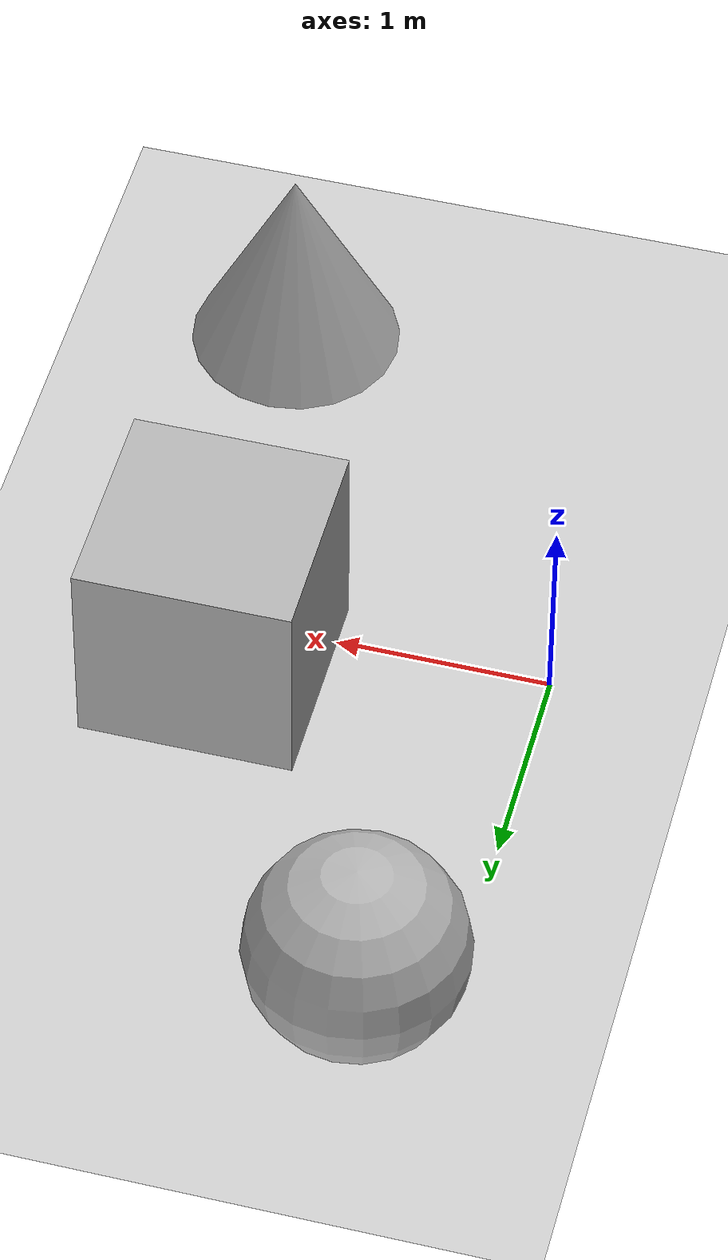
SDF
<sdf version='1.10'>
  <world name='empty'>
    <physics name='1ms' type='ignored'>
      <max_step_size>0.001</max_step_size>
      <real_time_factor>1</real_time_factor>
      <real_time_update_rate>1000</real_time_update_rate>
    </physics>
    <plugin name='gz::sim::systems::Physics' filename='gz-sim-physics-system'/>
    <plugin name='gz::sim::systems::UserCommands' filename='gz-sim-user-commands-system'/>
    <plugin name='gz::sim::systems::SceneBroadcaster' filename='gz-sim-scene-broadcaster-system'/>
    <plugin name='gz::sim::systems::Contact' filename='gz-sim-contact-system'/>
    <plugin name='gz::sim::systems::Sensors' filename='gz-sim-sensors-system'>
      <render_engine>ogre2</render_engine>
    </plugin>
    <gravity>0 0 -9.8000000000000007</gravity>
    <magnetic_field>5.5644999999999998e-06 2.2875799999999999e-05 -4.2388400000000002e-05</magnetic_field>
    <atmosphere type='adiabatic'/>
    <scene>
      <ambient>0.400000006 0.400000006 0.400000006 1</ambient>
      <background>0.699999988 0.699999988 0.699999988 1</background>
      <shadows>true</shadows>
    </scene>
    <model name='ground_plane'>
      <static>true</static>
      <link name='link'>
        <collision name='collision'>
          <geometry>
            <plane>
              <normal>0 0 1</normal>
              <size>100 100</size>
            </plane>
          </geometry>
          <surface>
            <friction>
              <ode/>
            </friction>
            <bounce/>
            <contact/>
          </surface>
        </collision>
        <visual name='visual'>
          <geometry>
            <plane>
              <normal>0 0 1</normal>
              <size>100 100</size>
            </plane>
          </geometry>
          <material>
            <ambient>0.800000012 0.800000012 0.800000012 1</ambient>
            <diffuse>0.800000012 0.800000012 0.800000012 1</diffuse>
            <specular>0.800000012 0.800000012 0.800000012 1</specular>
          </material>
        </visual>
        <pose>0 0 0 0 0 0</pose>
        <inertial>
          <pose>0 0 0 0 0 0</pose>
          <mass>1</mass>
          <inertia>
            <ixx>1</ixx>
            <ixy>0</ixy>
            <ixz>0</ixz>
            <iyy>1</iyy>
            <iyz>0</iyz>
            <izz>1</izz>
          </inertia>
        </inertial>
        <enable_wind>false</enable_wind>
      </link>
      <pose>0 0 0 0 0 0</pose>
      <self_collide>false</self_collide>
    </model>
    <model name='box'>
      <pose>1.5 0.28999999999999998 0.49999999990199806 -1.8199771475813215e-21 -1.9297776952617601e-21 -5.2015564374578951e-22</pose>
      <link name='box_link'>
        <inertial>
          <inertia>
            <ixx>0.16666</ixx>
            <ixy>0</ixy>
            <ixz>0</ixz>
            <iyy>0.16666</iyy>
            <iyz>0</iyz>
            <izz>0.16666</izz>
          </inertia>
          <mass>1</mass>
          <pose>0 0 0 0 0 0</pose>
        </inertial>
        <collision name='box_collision'>
          <geometry>
            <box>
              <size>1 1 1</size>
            </box>
          </geometry>
          <surface>
            <friction>
              <ode/>
            </friction>
            <bounce/>
            <contact/>
          </surface>
        </collision>
        <visual name='box_visual'>
          <geometry>
            <box>
              <size>1 1 1</size>
            </box>
          </geometry>
          <material>
            <ambient>0.300000012 0.300000012 0.300000012 1</ambient>
            <diffuse>0.699999988 0.699999988 0.699999988 1</diffuse>
            <specular>1 1 1 1</specular>
          </material>
        </visual>
        <pose>0 0 0 0 0 0</pose>
        <enable_wind>false</enable_wind>
      </link>
      <static>false</static>
      <self_collide>false</self_collide>
    </model>

    <model name='cone'>
      <pose>1.6937252640724236 -1.8651005277118653 0.49999999993296756 5.2548544155140844e-17 -7.7132841038066057e-10 -1.848369177196814e-23</pose>
      <link name='cone_link'>
        <inertial>
          <inertia>
            <ixx>0.074999999999999997</ixx>
            <ixy>0</ixy>
            <ixz>0</ixz>
            <iyy>0.074999999999999997</iyy>
            <iyz>0</iyz>
            <izz>0.074999999999999997</izz>
          </inertia>
          <mass>1</mass>
          <pose>0 0 0 0 0 0</pose>
        </inertial>
        <collision name='cone_collision'>
          <geometry>
            <cone>
              <radius>0.5</radius>
              <length>1</length>
            </cone>
          </geometry>
          <surface>
            <friction>
              <ode/>
            </friction>
            <bounce/>
            <contact/>
          </surface>
        </collision>
        <visual name='cone_visual'>
          <geometry>
            <cone>
              <radius>0.5</radius>
              <length>1</length>
            </cone>
          </geometry>
          <material>
            <ambient>0.300000012 0.300000012 0.300000012 1</ambient>
            <diffuse>0.699999988 0.699999988 0.699999988 1</diffuse>
            <specular>1 1 1 1</specular>
          </material>
        </visual>
        <pose>0 0 0 0 0 0</pose>
        <enable_wind>false</enable_wind>
      </link>
      <static>false</static>
      <self_collide>false</self_collide>
    </model>
    <model name='sphere'>
      <pose>0.37025925490920431 2.0675118618673078 0.499999999902001 0 0 0</pose>
      <link name='sphere_link'>
        <inertial>
          <inertia>
            <ixx>0.10000000000000001</ixx>
            <ixy>0</ixy>
            <ixz>0</ixz>
            <iyy>0.10000000000000001</iyy>
            <iyz>0</iyz>
            <izz>0.10000000000000001</izz>
          </inertia>
          <mass>1</mass>
          <pose>0 0 0 0 0 0</pose>
        </inertial>
        <collision name='sphere_collision'>
          <geometry>
            <sphere>
              <radius>0.5</radius>
            </sphere>
          </geometry>
          <surface>
            <friction>
              <ode/>
            </friction>
            <bounce/>
            <contact/>
          </surface>
        </collision>
        <visual name='sphere_visual'>
          <geometry>
            <sphere>
              <radius>0.5</radius>
            </sphere>
          </geometry>
          <material>
            <ambient>0.300000012 0.300000012 0.300000012 1</ambient>
            <diffuse>0.699999988 0.699999988 0.699999988 1</diffuse>
            <specular>1 1 1 1</specular>
          </material>
        </visual>
        <pose>0 0 0 0 0 0</pose>
        <enable_wind>false</enable_wind>
      </link>
      <static>false</static>
      <self_collide>false</self_collide>
    </model>
    <light name='sun' type='directional'>
      <pose>0 0 10 0 0 0</pose>
      <cast_shadows>true</cast_shadows>
      <intensity>1</intensity>
      <direction>-0.5 0.10000000000000001 -0.90000000000000002</direction>
      <diffuse>0.800000012 0.800000012 0.800000012 1</diffuse>
      <specular>0.200000003 0.200000003 0.200000003 1</specular>
      <attenuation>
        <range>1000</range>
        <linear>0.01</linear>
        <constant>0.90000000000000002</constant>
        <quadratic>0.001</quadratic>
      </attenuation>
      <spot>
        <inner_angle>0</inner_angle>
        <outer_angle>0</outer_angle>
        <falloff>0</falloff>
      </spot>
    </light>
  </world>
</sdf>
